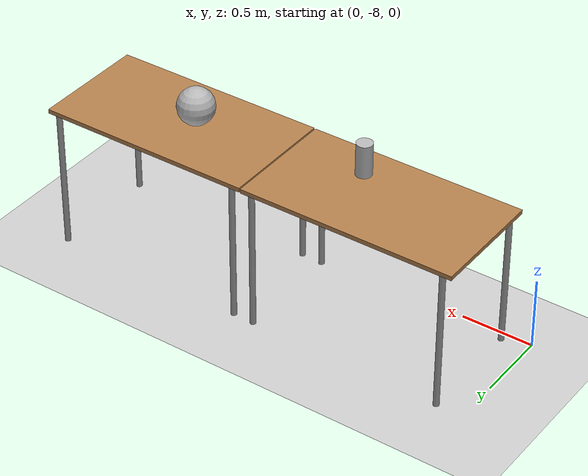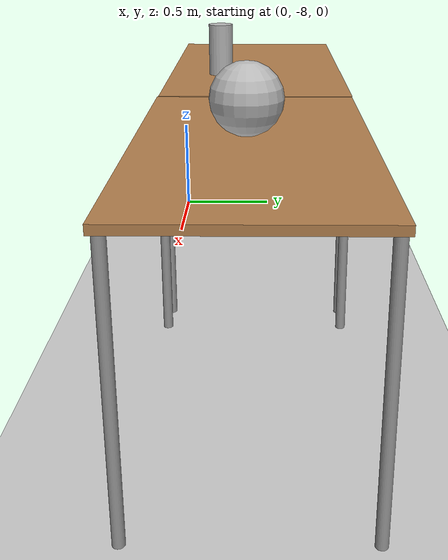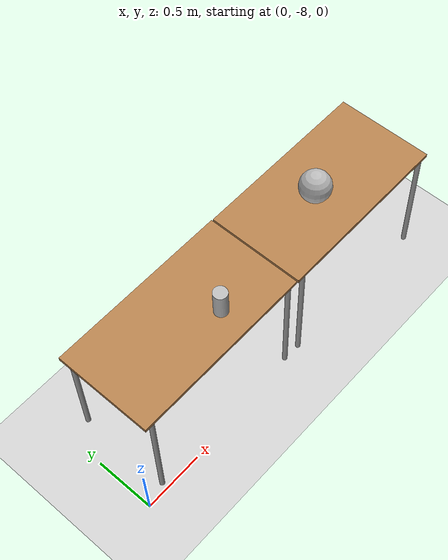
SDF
<sdf version="1.6">
 <world name="default">
  <light name="sun" type="directional">
   <pose>0 0 10 0 -0 0</pose>
   <diffuse>0.8 0.8 0.8 1</diffuse>
   <specular>0.1 0.1 0.1 1</specular>
   <attenuation>
    <range>1000</range>
    <constant>0.9</constant>
    <linear>0.01</linear>
    <quadratic>0.001</quadratic>
   </attenuation>
   <direction>-0.5 0.5 -1</direction>
  </light>
  <model name="ground_plane">
   <static>1</static>
   <link name="link">
    <collision name="collision">
     <geometry><plane><normal>0 0 1</normal><size>100 100</size></plane></geometry>
     <surface><friction><ode><mu>100</mu><mu2>50</mu2></ode></friction></surface>
    </collision>
    <visual name="visual">
     <cast_shadows>0</cast_shadows>
     <geometry><plane><normal>0 0 1</normal><size>100 100</size></plane></geometry>
     <material>
      <script><uri>file://media/materials/scripts/gazebo.material</uri><name>Gazebo/Grey</name></script>
     </material>
    </visual>
   </link>
  </model>
  <gravity>0 0 -9.8</gravity>
  <magnetic_field>6e-06 2.3e-05 -4.2e-05</magnetic_field>
  <atmosphere type="adiabatic"/>
  <physics name="default_physics" default="0" type="ode">
   <max_step_size>0.001</max_step_size>
   <real_time_factor>1</real_time_factor>
   <real_time_update_rate>1000</real_time_update_rate>
  </physics>
  <scene><ambient>0.4 0.4 0.4 1</ambient><background>0.7 0.7 0.7 1</background><shadows>1</shadows></scene>
  <spherical_coordinates>
   <surface_model>EARTH_WGS84</surface_model>
   <latitude_deg>0</latitude_deg>
   <longitude_deg>0</longitude_deg>
   <elevation>0</elevation>
   <heading_deg>0</heading_deg>
  </spherical_coordinates>
  <model name="beer">
   <link name="link">
    <pose>0 0 0.115 0 -0 0</pose>
    <inertial>
     <mass>0.39</mass>
     <inertia><ixx>0.00058</ixx><ixy>0</ixy><ixz>0</ixz><iyy>0.00058</iyy><iyz>0</iyz><izz>0.00019</izz></inertia>
    </inertial>
    <collision name="collision">
     <geometry><cylinder><radius>0.055</radius><length>0.23</length></cylinder></geometry>
    </collision>
    <visual name="visual">
     <geometry><cylinder><radius>0.055</radius><length>0.23</length></cylinder></geometry>
     <material>
      <script>
       <uri>model://beer/materials/scripts</uri>
       <uri>model://beer/materials/textures</uri>
       <name>Beer/Diffuse</name>
      </script>
     </material>
    </visual>
   </link>
   <pose>1.09723 -7.72779 1.01521 0.000473 -0.004039 -0.050806</pose>
  </model>
  <model name="table_0">
   <static>1</static>
   <link name="link">
    <collision name="surface">
     <pose>0 0 1 0 -0 0</pose>
     <geometry><box><size>1.5 0.8 0.03</size></box></geometry>
     <surface><friction><ode><mu>0.6</mu><mu2>0.6</mu2></ode></friction></surface>
    </collision>
    <visual name="visual1">
     <pose>0 0 1 0 -0 0</pose>
     <geometry><box><size>1.5 0.8 0.03</size></box></geometry>
     <material>
      <script><uri>file://media/materials/scripts/gazebo.material</uri><name>Gazebo/Wood</name></script>
     </material>
    </visual>
    <collision name="front_left_leg">
     <pose>0.68 0.38 0.5 0 -0 0</pose>
     <geometry><cylinder><radius>0.02</radius><length>1</length></cylinder></geometry>
    </collision>
    <visual name="front_left_leg">
     <pose>0.68 0.38 0.5 0 -0 0</pose>
     <geometry><cylinder><radius>0.02</radius><length>1</length></cylinder></geometry>
     <material>
      <script><uri>file://media/materials/scripts/gazebo.material</uri><name>Gazebo/Grey</name></script>
     </material>
    </visual>
    <collision name="front_right_leg">
     <pose>0.68 -0.38 0.5 0 -0 0</pose>
     <geometry><cylinder><radius>0.02</radius><length>1</length></cylinder></geometry>
    </collision>
    <visual name="front_right_leg">
     <pose>0.68 -0.38 0.5 0 -0 0</pose>
     <geometry><cylinder><radius>0.02</radius><length>1</length></cylinder></geometry>
     <material>
      <script><uri>file://media/materials/scripts/gazebo.material</uri><name>Gazebo/Grey</name></script>
     </material>
    </visual>
    <collision name="back_right_leg">
     <pose>-0.68 -0.38 0.5 0 -0 0</pose>
     <geometry><cylinder><radius>0.02</radius><length>1</length></cylinder></geometry>
    </collision>
    <visual name="back_right_leg">
     <pose>-0.68 -0.38 0.5 0 -0 0</pose>
     <geometry><cylinder><radius>0.02</radius><length>1</length></cylinder></geometry>
     <material>
      <script><uri>file://media/materials/scripts/gazebo.material</uri><name>Gazebo/Grey</name></script>
     </material>
    </visual>
    <collision name="back_left_leg">
     <pose>-0.68 0.38 0.5 0 -0 0</pose>
     <geometry><cylinder><radius>0.02</radius><length>1</length></cylinder></geometry>
    </collision>
    <visual name="back_left_leg">
     <pose>-0.68 0.38 0.5 0 -0 0</pose>
     <geometry><cylinder><radius>0.02</radius><length>1</length></cylinder></geometry>
     <material>
      <script><uri>file://media/materials/scripts/gazebo.material</uri><name>Gazebo/Grey</name></script>
     </material>
    </visual>
   </link>
   <pose>0.867841 -7.56377 0 0 -0 0</pose>
  </model>
  <model name="table">
   <static>1</static>
   <link name="link">
    <collision name="surface">
     <pose>0 0 1 0 -0 0</pose>
     <geometry><box><size>1.5 0.8 0.03</size></box></geometry>
     <surface><friction><ode><mu>0.6</mu><mu2>0.6</mu2></ode></friction></surface>
    </collision>
    <visual name="visual1">
     <pose>0 0 1 0 -0 0</pose>
     <geometry><box><size>1.5 0.8 0.03</size></box></geometry>
     <material>
      <script><uri>file://media/materials/scripts/gazebo.material</uri><name>Gazebo/Wood</name></script>
     </material>
    </visual>
    <collision name="front_left_leg">
     <pose>0.68 0.38 0.5 0 -0 0</pose>
     <geometry><cylinder><radius>0.02</radius><length>1</length></cylinder></geometry>
    </collision>
    <visual name="front_left_leg">
     <pose>0.68 0.38 0.5 0 -0 0</pose>
     <geometry><cylinder><radius>0.02</radius><length>1</length></cylinder></geometry>
     <material>
      <script><uri>file://media/materials/scripts/gazebo.material</uri><name>Gazebo/Grey</name></script>
     </material>
    </visual>
    <collision name="front_right_leg">
     <pose>0.68 -0.38 0.5 0 -0 0</pose>
     <geometry><cylinder><radius>0.02</radius><length>1</length></cylinder></geometry>
    </collision>
    <visual name="front_right_leg">
     <pose>0.68 -0.38 0.5 0 -0 0</pose>
     <geometry><cylinder><radius>0.02</radius><length>1</length></cylinder></geometry>
     <material>
      <script><uri>file://media/materials/scripts/gazebo.material</uri><name>Gazebo/Grey</name></script>
     </material>
    </visual>
    <collision name="back_right_leg">
     <pose>-0.68 -0.38 0.5 0 -0 0</pose>
     <geometry><cylinder><radius>0.02</radius><length>1</length></cylinder></geometry>
    </collision>
    <visual name="back_right_leg">
     <pose>-0.68 -0.38 0.5 0 -0 0</pose>
     <geometry><cylinder><radius>0.02</radius><length>1</length></cylinder></geometry>
     <material>
      <script><uri>file://media/materials/scripts/gazebo.material</uri><name>Gazebo/Grey</name></script>
     </material>
    </visual>
    <collision name="back_left_leg">
     <pose>-0.68 0.38 0.5 0 -0 0</pose>
     <geometry><cylinder><radius>0.02</radius><length>1</length></cylinder></geometry>
    </collision>
    <visual name="back_left_leg">
     <pose>-0.68 0.38 0.5 0 -0 0</pose>
     <geometry><cylinder><radius>0.02</radius><length>1</length></cylinder></geometry>
     <material>
      <script><uri>file://media/materials/scripts/gazebo.material</uri><name>Gazebo/Grey</name></script>
     </material>
    </visual>
   </link>
   <pose>2.37957 -7.56738 0 0 -0 0</pose>
  </model>
  <model name="frc2016_ball">
   <pose>2.26823 -7.5874 1.14183 0 -0 0</pose>
   <link name="link">
    <inertial>
     <mass>0.213</mass>
     <inertia>
      <ixx>0.00322667</ixx>
      <ixy>0</ixy>
      <ixz>0</ixz>
      <iyy>0.00322667</iyy>
      <iyz>0</iyz>
      <izz>0.00322667</izz>
     </inertia>
    </inertial>
    <visual name="visual"><geometry><sphere><radius>0.127</radius></sphere></geometry></visual>
    <collision name="collision">
     <geometry><sphere><radius>0.127</radius></sphere></geometry>
     <surface>
      <bounce><restitution_coefficient>0.15937</restitution_coefficient><threshold>0</threshold></bounce>
      <contact><ode><max_vel>100</max_vel><min_depth>0.001</min_depth></ode></contact>
     </surface>
    </collision>
   </link>
  </model>
 </world>
</sdf>
